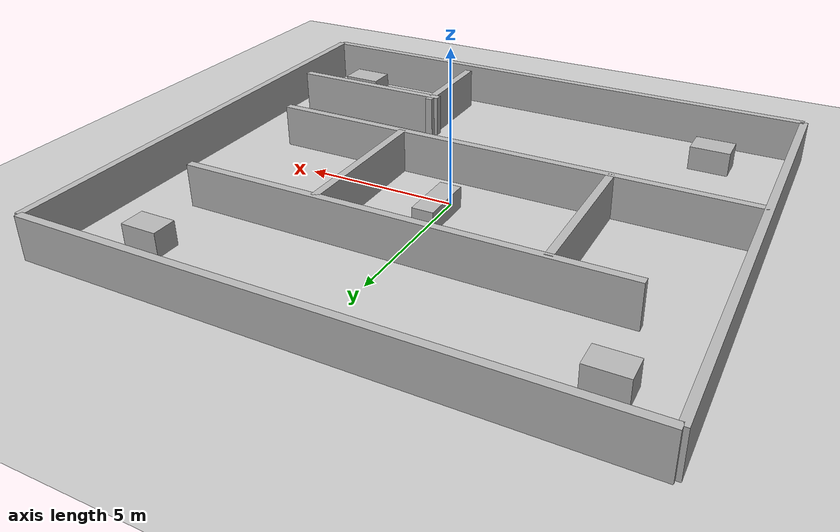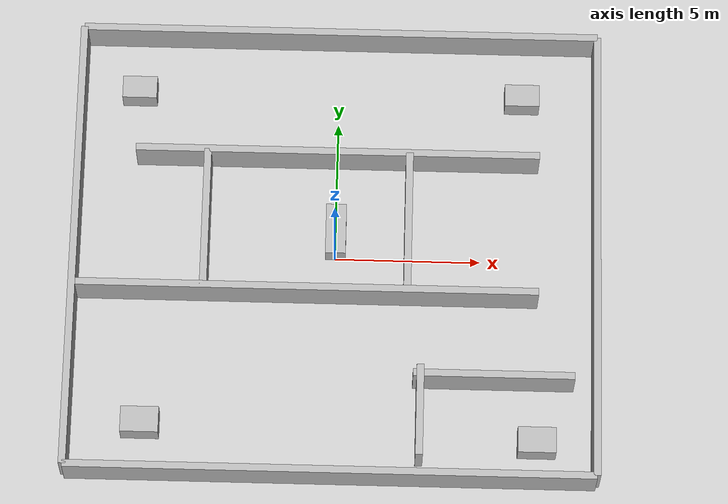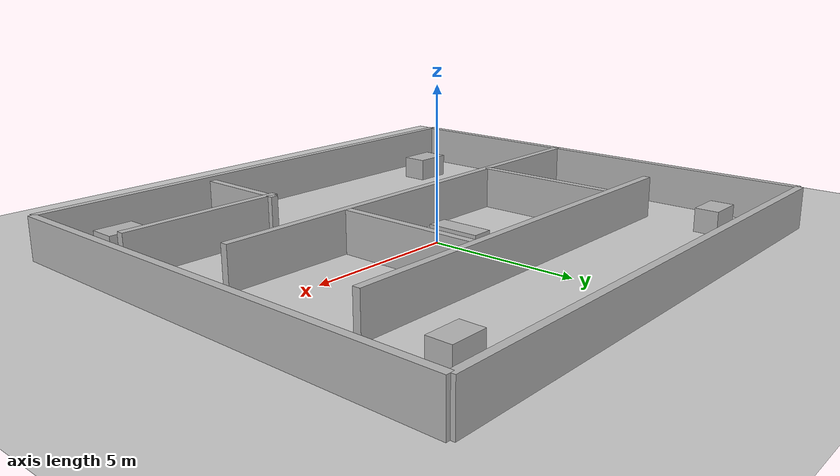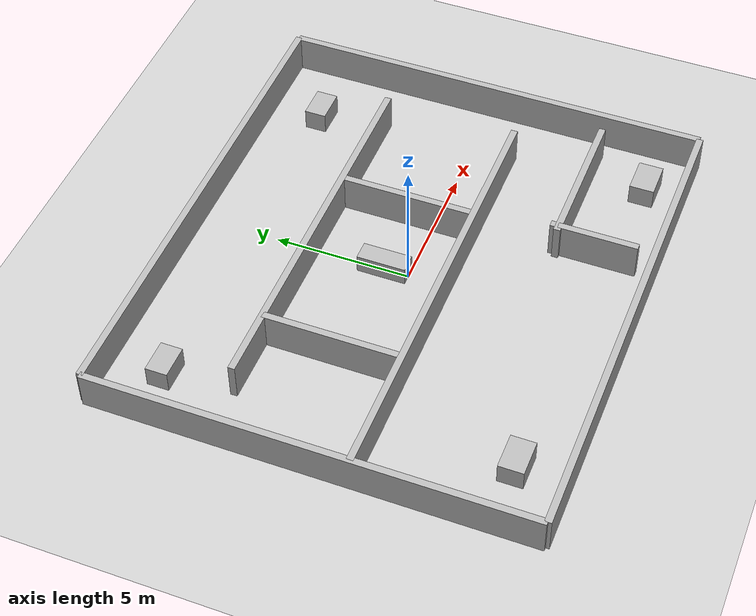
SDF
<?xml version="1.0" ?>
<sdf version="1.6">
  <world name="office_forks">
    <include><uri>model://ground_plane</uri></include>
    <include><uri>model://sun</uri></include>

    <model name="office_layout">
      <static>true</static>
      <link name="layout">
        <collision name="n"><pose>0 8 0.7 0 0 0</pose><geometry><box><size>18 0.25 1.4</size></box></geometry></collision>
        <collision name="s"><pose>0 -8 0.7 0 0 0</pose><geometry><box><size>18 0.25 1.4</size></box></geometry></collision>
        <collision name="e"><pose>9 0 0.7 0 0 0</pose><geometry><box><size>0.25 16 1.4</size></box></geometry></collision>
        <collision name="w"><pose>-9 0 0.7 0 0 0</pose><geometry><box><size>0.25 16 1.4</size></box></geometry></collision>

        <collision name="hall_1"><pose>0 3.5 0.7 0 0 0</pose><geometry><box><size>14 0.25 1.4</size></box></geometry></collision>
        <collision name="hall_2"><pose>-1 -1.5 0.7 0 0 0</pose><geometry><box><size>16 0.25 1.4</size></box></geometry></collision>
        <collision name="split_1"><pose>-4.5 1.0 0.7 0 0 0</pose><geometry><box><size>0.25 5.0 1.4</size></box></geometry></collision>
        <collision name="split_2"><pose>2.5 1.0 0.7 0 0 0</pose><geometry><box><size>0.25 5.0 1.4</size></box></geometry></collision>
        <collision name="room_block"><pose>5.5 -4.5 0.7 0 0 0</pose><geometry><box><size>5.5 0.25 1.4</size></box></geometry></collision>
        <collision name="room_block_2"><pose>3.0 -5.8 0.7 0 0 1.57</pose><geometry><box><size>3.2 0.25 1.4</size></box></geometry></collision>

        <visual name="n_v"><pose>0 8 0.7 0 0 0</pose><geometry><box><size>18 0.25 1.4</size></box></geometry></visual>
        <visual name="s_v"><pose>0 -8 0.7 0 0 0</pose><geometry><box><size>18 0.25 1.4</size></box></geometry></visual>
        <visual name="e_v"><pose>9 0 0.7 0 0 0</pose><geometry><box><size>0.25 16 1.4</size></box></geometry></visual>
        <visual name="w_v"><pose>-9 0 0.7 0 0 0</pose><geometry><box><size>0.25 16 1.4</size></box></geometry></visual>
        <visual name="hall_1_v"><pose>0 3.5 0.7 0 0 0</pose><geometry><box><size>14 0.25 1.4</size></box></geometry></visual>
        <visual name="hall_2_v"><pose>-1 -1.5 0.7 0 0 0</pose><geometry><box><size>16 0.25 1.4</size></box></geometry></visual>
        <visual name="split_1_v"><pose>-4.5 1.0 0.7 0 0 0</pose><geometry><box><size>0.25 5.0 1.4</size></box></geometry></visual>
        <visual name="split_2_v"><pose>2.5 1.0 0.7 0 0 0</pose><geometry><box><size>0.25 5.0 1.4</size></box></geometry></visual>
        <visual name="room_block_v"><pose>5.5 -4.5 0.7 0 0 0</pose><geometry><box><size>5.5 0.25 1.4</size></box></geometry></visual>
        <visual name="room_block_2_v"><pose>3.0 -5.8 0.7 0 0 1.57</pose><geometry><box><size>3.2 0.25 1.4</size></box></geometry></visual>
      </link>
    </model>

    <model name="office_furniture">
      <static>true</static>
      <link name="furniture">
        <collision name="desk1"><pose>-7.0 6.0 0.4 0 0 0</pose><geometry><box><size>1.2 0.8 0.8</size></box></geometry></collision>
        <collision name="desk2"><pose>6.4 6.0 0.4 0 0 0</pose><geometry><box><size>1.2 0.8 0.8</size></box></geometry></collision>
        <collision name="desk3"><pose>-6.5 -6.2 0.4 0 0 0</pose><geometry><box><size>1.3 0.9 0.8</size></box></geometry></collision>
        <collision name="desk4"><pose>7.0 -6.6 0.4 0 0 0</pose><geometry><box><size>1.3 0.9 0.8</size></box></geometry></collision>
        <collision name="sofa"><pose>0.0 0.9 0.35 0 0 1.57</pose><geometry><box><size>1.8 0.7 0.7</size></box></geometry></collision>
        <visual name="desk1v"><pose>-7.0 6.0 0.4 0 0 0</pose><geometry><box><size>1.2 0.8 0.8</size></box></geometry></visual>
        <visual name="desk2v"><pose>6.4 6.0 0.4 0 0 0</pose><geometry><box><size>1.2 0.8 0.8</size></box></geometry></visual>
        <visual name="desk3v"><pose>-6.5 -6.2 0.4 0 0 0</pose><geometry><box><size>1.3 0.9 0.8</size></box></geometry></visual>
        <visual name="desk4v"><pose>7.0 -6.6 0.4 0 0 0</pose><geometry><box><size>1.3 0.9 0.8</size></box></geometry></visual>
        <visual name="sofav"><pose>0.0 0.9 0.35 0 0 1.57</pose><geometry><box><size>1.8 0.7 0.7</size></box></geometry></visual>
      </link>
    </model>
  </world>
</sdf>
